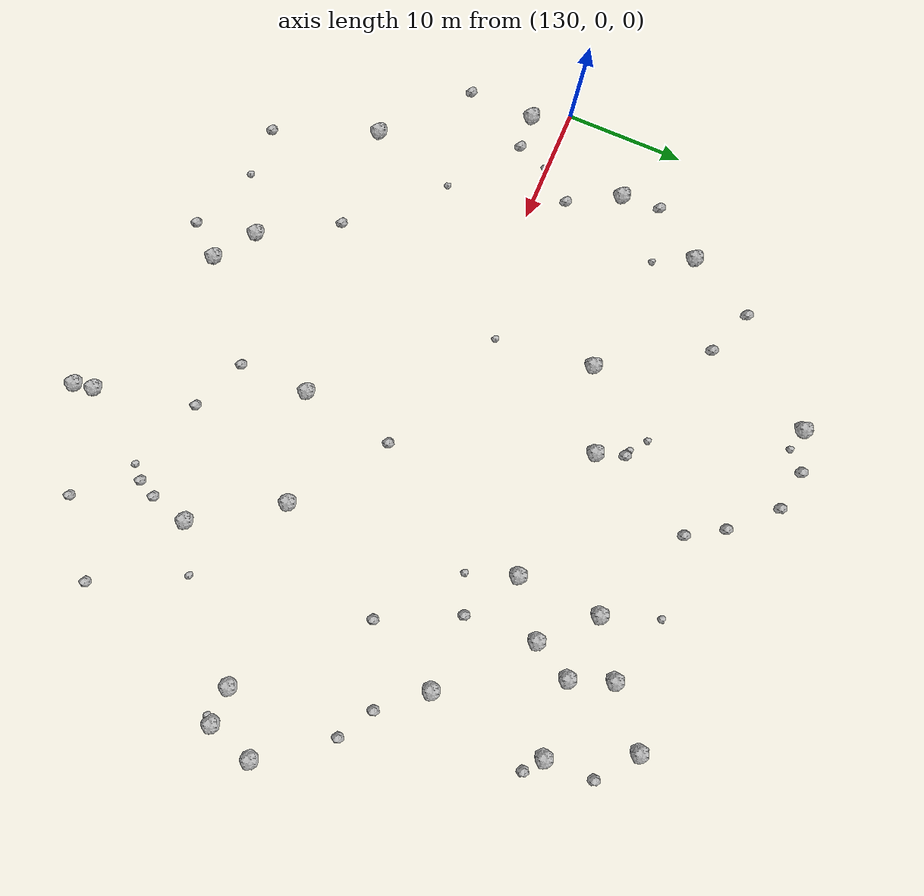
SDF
<sdf version="1.6">
 <world name="default">
  <include><uri>model://sun</uri></include>
  <model name="rock1_4_2">
   <include><uri>model://rock1</uri><pose>187.35631866739038 -6.3766005244026545 0.5 0 0 0</pose></include>
  </model>
  <model name="rock1_4_3">
   <include><uri>model://rock1</uri><pose>168.2221612100495 17.657505675833534 0.5 0 0 0</pose></include>
  </model>
  <model name="rock1_4_4">
   <include><uri>model://rock1</uri><pose>131.58623766678627 -3.0640250281099455 0.5 0 0 0</pose></include>
  </model>
  <model name="rock1_4_5">
   <include><uri>model://rock1</uri><pose>167.9272271151934 10.724224889639544 0.5 0 0 0</pose></include>
  </model>
  <model name="rock1_4_6">
   <include><uri>model://rock1</uri><pose>172.32844823036368 20.5206901730986 0.5 0 0 0</pose></include>
  </model>
  <model name="rock1_4_7">
   <include><uri>model://rock1</uri><pose>188.51455489151195 -2.5911737525294107 0.5 0 0 0</pose></include>
  </model>
  <model name="rock1_4_8">
   <include><uri>model://rock1</uri><pose>150.55955260838095 -20.24242706892819 0.5 0 0 0</pose></include>
  </model>
  <model name="rock1_4_9">
   <include><uri>model://rock1</uri><pose>153.82484170504756 -22.57824123486199 0.5 0 0 0</pose></include>
  </model>
  <model name="rock1_4_10">
   <include><uri>model://rock1</uri><pose>138.06900322541813 14.27057342611652 0.5 0 0 0</pose></include>
  </model>
  <model name="rock1_4_11">
   <include><uri>model://rock1</uri><pose>176.46317981364692 24.094528363370067 0.5 0 0 0</pose></include>
  </model>
  <model name="rock1_4_12">
   <include><uri>model://rock1</uri><pose>135.2781669398353 6.686537395559789 0.5 0 0 0</pose></include>
  </model>
  <model name="rock1_4_13">
   <include><uri>model://rock1</uri><pose>171.9589835809677 13.923654710124026 0.5 0 0 0</pose></include>
  </model>
  <model name="rock1_4_14">
   <include><uri>model://rock1</uri><pose>148.192143277121 27.350497072024645 0.5 0 0 0</pose></include>
  </model>
  <model name="rock1_4_15">
   <include><uri>model://rock1</uri><pose>173.62032464021945 17.134849017871318 0.5 0 0 0</pose></include>
  </model>
  <model name="rock1_4_16">
   <include><uri>model://rock1</uri><pose>179.6444526530014 17.644999586254855 0.5 0 0 0</pose></include>
  </model>
  <model name="rock1_4_17">
   <include><uri>model://rock1</uri><pose>167.74971769735856 -26.56895333591468 0.5 0 0 0</pose></include>
  </model>
  <model name="rock1_4_18">
   <include><uri>model://rock1</uri><pose>174.43379167500063 -15.017033914952139 0.5 0 0 0</pose></include>
  </model>
  <model name="rock1_4_19">
   <include><uri>model://rock1</uri><pose>138.0793946247639 -14.543058799552897 0.5 0 0 0</pose></include>
  </model>
  <model name="rock1_4_20">
   <include><uri>model://rock1</uri><pose>161.1686926468372 -10.623680553943409 0.5 0 0 0</pose></include>
  </model>
  <model name="rock1_4_21">
   <include><uri>model://rock1</uri><pose>149.9589642787624 9.910209409105299 0.5 0 0 0</pose></include>
  </model>
  <model name="rock1_4_22">
   <include><uri>model://rock1</uri><pose>169.91944164164022 -8.18457638488222 0.5 0 0 0</pose></include>
  </model>
  <model name="rock1_4_23">
   <include><uri>model://rock1</uri><pose>168.06101930738075 -28.200312932258804 0.5 0 0 0</pose></include>
  </model>
  <model name="rock1_4_24">
   <include><uri>model://rock1</uri><pose>156.58410547938396 12.694272128735193 0.5 0 0 0</pose></include>
  </model>
  <model name="rock1_4_25">
   <include><uri>model://rock1</uri><pose>178.5450911028683 7.933769174072033 0.5 0 0 0</pose></include>
  </model>
  <model name="rock1_4_26">
   <include><uri>model://rock1</uri><pose>184.3903891660424 -6.359730233125312 0.5 0 0 0</pose></include>
  </model>
  <model name="rock2_4_0">
   <include><uri>model://rock2</uri><pose>173.69821473644623 -18.20116931346748 0.3 0 0 0</pose></include>
  </model>
  <model name="rock2_4_1">
   <include><uri>model://rock2</uri><pose>131.41294749295594 -8.689664596597051 0.3 0 0 0</pose></include>
  </model>
  <model name="rock2_4_2">
   <include><uri>model://rock2</uri><pose>161.21709732359542 -16.466683810095674 0.3 0 0 0</pose></include>
  </model>
  <model name="rock2_4_3">
   <include><uri>model://rock2</uri><pose>151.63666048232653 -25.268914454230266 0.3 0 0 0</pose></include>
  </model>
  <model name="rock2_4_4">
   <include><uri>model://rock2</uri><pose>146.81049669262015 -14.02943046746123 0.3 0 0 0</pose></include>
  </model>
  <model name="rock2_4_5">
   <include><uri>model://rock2</uri><pose>176.2626851728792 -24.353126231103094 0.3 0 0 0</pose></include>
  </model>
  <model name="rock2_4_6">
   <include><uri>model://rock2</uri><pose>175.45767391661627 1.7183210238773263 0.3 0 0 0</pose></include>
  </model>
  <model name="rock2_4_7">
   <include><uri>model://rock2</uri><pose>179.56927377428008 21.71005418837585 0.3 0 0 0</pose></include>
  </model>
  <model name="rock2_4_8">
   <include><uri>model://rock2</uri><pose>154.82084109204015 27.821307731968254 0.3 0 0 0</pose></include>
  </model>
  <model name="rock2_4_9">
   <include><uri>model://rock2</uri><pose>134.404590616874 -2.8823174414311517 0.3 0 0 0</pose></include>
  </model>
  <model name="rock2_4_10">
   <include><uri>model://rock2</uri><pose>134.94194426879787 10.049729691712464 0.3 0 0 0</pose></include>
  </model>
  <model name="rock2_4_11">
   <include><uri>model://rock2</uri><pose>184.4515596443531 2.840205632909125 0.3 0 0 0</pose></include>
  </model>
  <model name="rock2_4_12">
   <include><uri>model://rock2</uri><pose>159.82766764222526 21.541905668651026 0.3 0 0 0</pose></include>
  </model>
  <model name="rock2_4_13">
   <include><uri>model://rock2</uri><pose>151.44218521440482 28.409163968653864 0.3 0 0 0</pose></include>
  </model>
  <model name="rock2_4_14">
   <include><uri>model://rock2</uri><pose>172.96691425267497 -19.722809603274907 0.3 0 0 0</pose></include>
  </model>
  <model name="rock2_4_15">
   <include><uri>model://rock2</uri><pose>181.5943454303966 4.493982726069163 0.3 0 0 0</pose></include>
  </model>
  <model name="rock2_4_16">
   <include><uri>model://rock2</uri><pose>172.3547639742448 8.048024639215178 0.3 0 0 0</pose></include>
  </model>
  <model name="rock2_4_17">
   <include><uri>model://rock2</uri><pose>181.10992582110254 16.566071967722223 0.3 0 0 0</pose></include>
  </model>
  <model name="rock2_4_18">
   <include><uri>model://rock2</uri><pose>141.49719533584698 -23.02960719202614 0.3 0 0 0</pose></include>
  </model>
  <model name="rock2_4_19">
   <include><uri>model://rock2</uri><pose>162.36100720332115 -2.8144081574447597 0.3 0 0 0</pose></include>
  </model>
  <model name="rock2_4_20">
   <include><uri>model://rock2</uri><pose>140.87023750140582 20.006768064464822 0.3 0 0 0</pose></include>
  </model>
  <model name="rock2_4_21">
   <include><uri>model://rock2</uri><pose>137.5345090498908 2.561998550657222 0.3 0 0 0</pose></include>
  </model>
  <model name="rock2_4_22">
   <include><uri>model://rock2</uri><pose>155.76312991488282 15.008108423533272 0.3 0 0 0</pose></include>
  </model>
  <model name="rock2_4_23">
   <include><uri>model://rock2</uri><pose>181.7487415753184 -20.052649758306536 0.3 0 0 0</pose></include>
  </model>
  <model name="rock2_4_24">
   <include><uri>model://rock2</uri><pose>165.73996549707863 -18.385169260208677 0.3 0 0 0</pose></include>
  </model>
  <model name="rock2_4_25">
   <include><uri>model://rock2</uri><pose>144.82633941352336 18.399517377116638 0.3 0 0 0</pose></include>
  </model>
  <model name="rock2_4_26">
   <include><uri>model://rock2</uri><pose>158.05566146401227 24.44635505737388 0.3 0 0 0</pose></include>
  </model>
  <model name="rock3_4_0">
   <include><uri>model://rock3</uri><pose>171.94933704564386 -20.759925336040663 0.2 0 0 0</pose></include>
  </model>
  <model name="rock3_4_1">
   <include><uri>model://rock3</uri><pose>169.35954875422303 6.797099226779707 0.2 0 0 0</pose></include>
  </model>
  <model name="rock3_4_2">
   <include><uri>model://rock3</uri><pose>150.968199184366 1.6934172441639603 0.2 0 0 0</pose></include>
  </model>
  <model name="rock3_4_3">
   <include><uri>model://rock3</uri><pose>145.85302114937355 -23.03507014257766 0.2 0 0 0</pose></include>
  </model>
  <model name="rock3_4_4">
   <include><uri>model://rock3</uri><pose>178.1085069199183 -12.903629951930245 0.2 0 0 0</pose></include>
  </model>
  <model name="rock3_4_5">
   <include><uri>model://rock3</uri><pose>135.35252343951305 -0.2791525870532361 0.2 0 0 0</pose></include>
  </model>
  <model name="rock3_4_6">
   <include><uri>model://rock3</uri><pose>140.14804508621242 -7.233323410663004 0.2 0 0 0</pose></include>
  </model>
  <model name="rock3_4_7">
   <include><uri>model://rock3</uri><pose>166.56483959521492 22.209454779023638 0.2 0 0 0</pose></include>
  </model>
  <model name="rock3_4_8">
   <include><uri>model://rock3</uri><pose>153.92663469627377 16.218166677995583 0.2 0 0 0</pose></include>
  </model>
  <model name="rock3_4_9">
   <include><uri>model://rock3</uri><pose>150.0105553628442 26.959830218299025 0.2 0 0 0</pose></include>
  </model>
  <model name="rock3_4_10">
   <include><uri>model://rock3</uri><pose>139.6100087315269 11.129292775441762 0.2 0 0 0</pose></include>
  </model>
  <model name="rock3_4_11">
   <include><uri>model://rock3</uri><pose>186.93237351217746 -6.982940763778942 0.2 0 0 0</pose></include>
  </model>
  <model name="rock3_4_12">
   <include><uri>model://rock3</uri><pose>155.23570707891105 15.172165992993115 0.2 0 0 0</pose></include>
  </model>
 </world>
</sdf>
